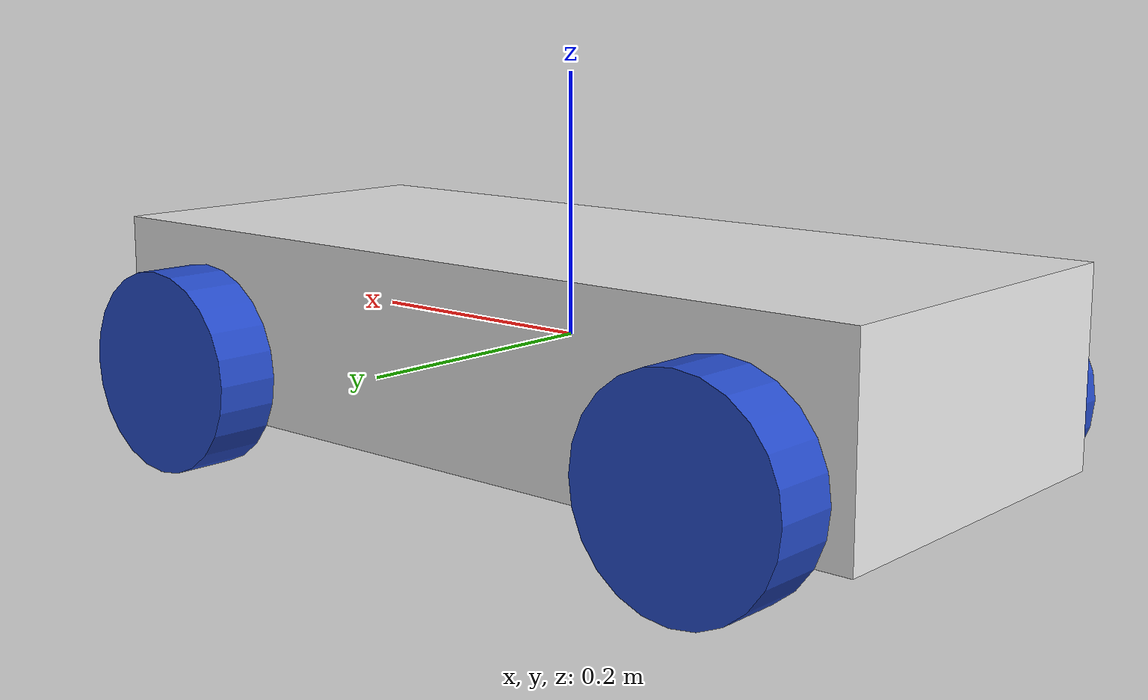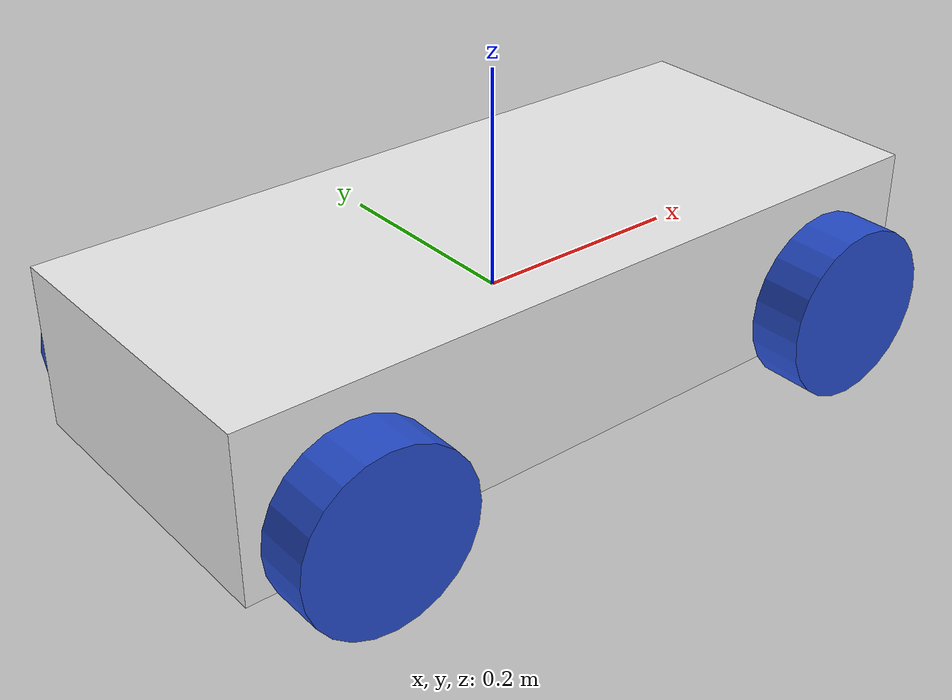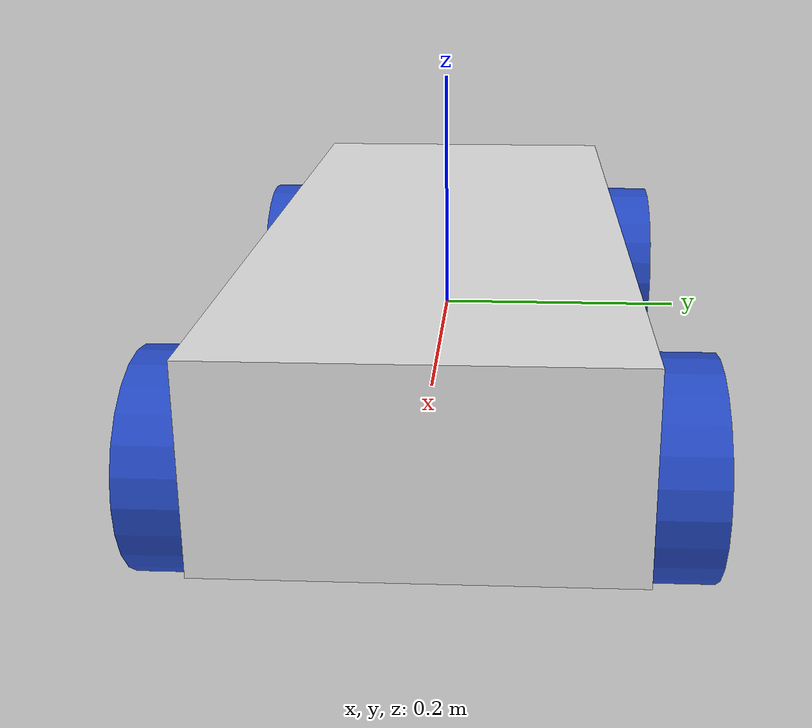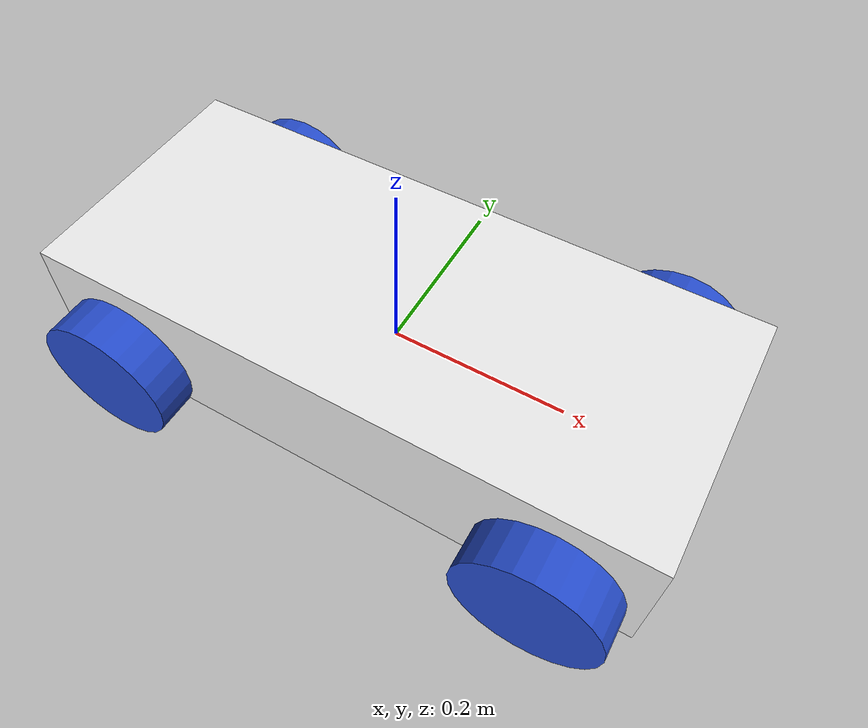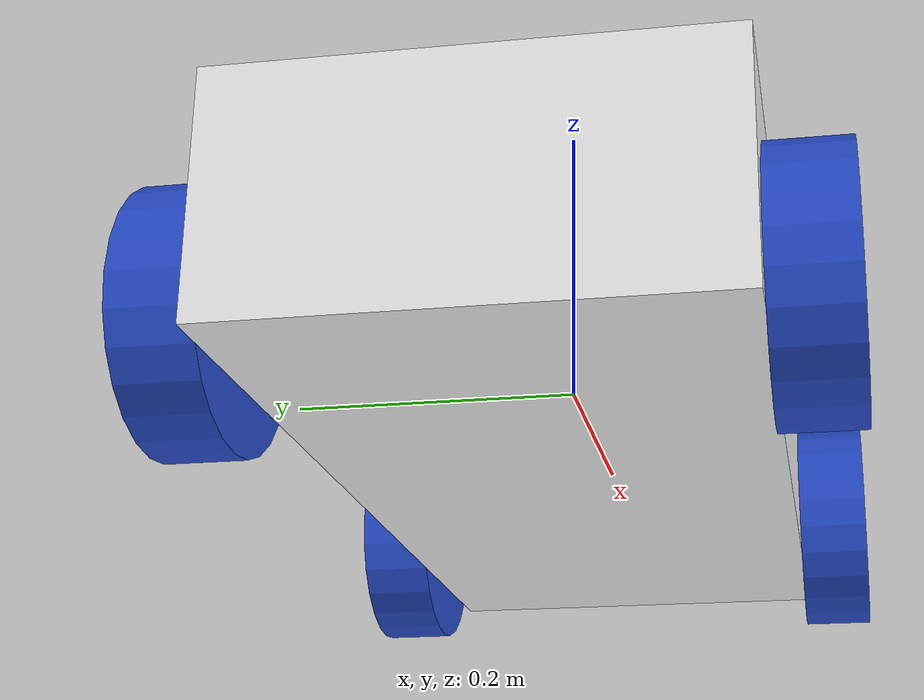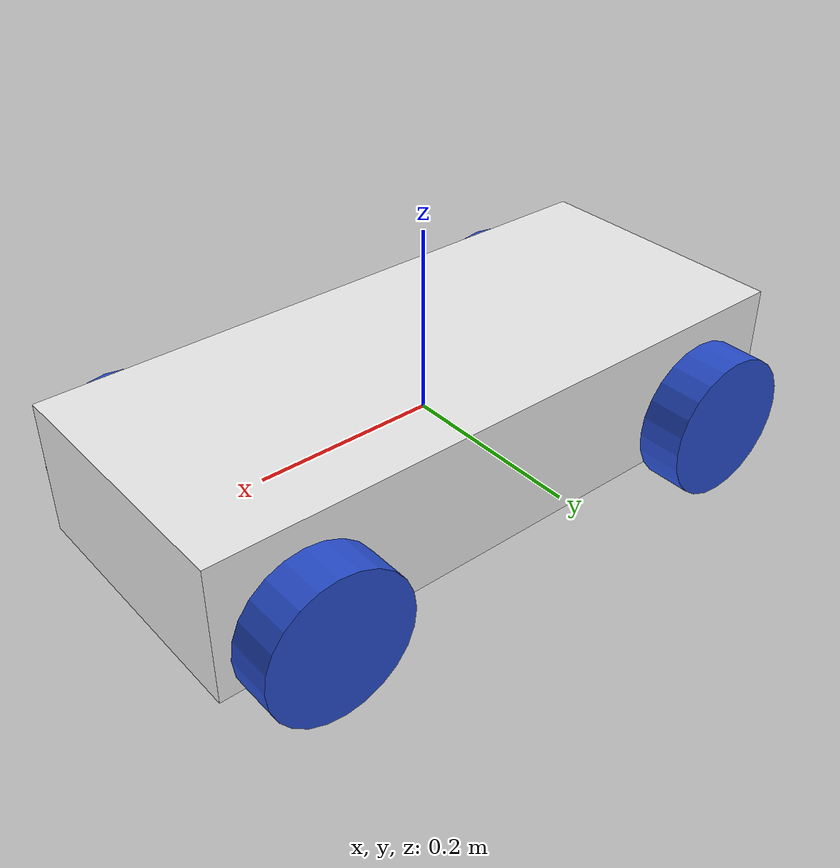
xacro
<?xml version="1.0"?>
<robot xmlns:xacro="http://www.ros.org/wiki/xacro">

    <!-- Body dimensiones -->
    <xacro:include filename="inertial_macros.xacro"/>
    <xacro:property name="body_link_x_dim" value="0.7"/>
    <xacro:property name="body_link_y_dim" value="0.3"/>
    <xacro:property name="body_link_z_dim" value="0.15"/>
    <!-- wheel dimensiones -->
    <xacro:include filename="inertial_macros.xacro"/>
    <xacro:property name="wheel_link_radius" value="0.08"/>
    <xacro:property name="wheel_link_length" value="0.05"/>
    <xacro:property name="wheel_link_z_location" value="-0.035"/>
    <!-- Example link -->
        <link name="base_link">

    </link>

    <joint name="base_joint" type="fixed">
        <parent link="base_link"/>
        <child link="chassis"/>
    </joint>
    <!-- chassis link -->
    <link name="chassis">
        <visual>
            <origin xyz="0 0 0"/>
            <geometry>
                <box size="${body_link_x_dim} ${body_link_y_dim} ${body_link_z_dim}"/>
            </geometry>
            <material name="white"/>
        </visual>
        <collision>
            <origin xyz="0 0 0"/>
            <geometry>
                <box size="${body_link_x_dim} ${body_link_y_dim} ${body_link_z_dim}"/>
            </geometry>
        </collision>
        <xacro:inertial_box mass="0.5" x="${body_link_x_dim}" y="${body_link_y_dim}" z="${body_link_z_dim}">
            <origin xyz="0 0 0" rpy="0 0 0"/>
        </xacro:inertial_box>
    </link>

    <joint name="left_steering_joint" type="revolute">
        <parent link="base_link"/>
        <child link="left_steering_link"/>
        <origin xyz="${body_link_x_dim/2-1.2*wheel_link_radius} ${body_link_y_dim/2} ${wheel_link_z_location}" rpy="0 0 0"/>
        <axis xyz="0 0 1"/>
        <limit effort="100" lower="-0.41" upper="0.41" velocity="0.5"/>

    </joint>

    <link name="left_steering_link">
        <visual>
            <origin xyz="0 0 0" rpy="${pi/2} 0 0"/>
            <geometry>
                <cylinder radius="${wheel_link_radius*0.4}" length="0.01"/>
            </geometry>
            <material name="blue"/>
        </visual>
        <collision>
            <origin xyz="0 0 0" rpy="${pi/2} 0 0"/>
            <geometry>
                <sphere radius="${wheel_link_radius*0.4}"/>
            </geometry>
        </collision>
        <xacro:inertial_cylinder mass="0.1" length="0.01" radius="${wheel_link_radius*0.4}">
            <origin xyz="0 0 0" rpy="${pi/2} 0 0"/>
        </xacro:inertial_cylinder>
    </link>

    <joint name="right_steering_joint" type="revolute">
        <parent link="base_link"/>
        <child link="right_steering_link"/>
        <origin xyz="${body_link_x_dim/2-1.2*wheel_link_radius} ${-body_link_y_dim/2} ${wheel_link_z_location}" rpy="0 0 0"/>
        <axis xyz="0 0 1"/>
        <limit effort="100" lower="-0.41" upper="0.41" velocity="0.5"/>

    </joint>

    <link name="right_steering_link">
    <visual>
            <origin xyz="0 0 0" rpy="${pi/2} 0 0"/>
            <geometry>
                <cylinder radius="${wheel_link_radius*0.4}" length="0.01"/>
            </geometry>
            <material name="blue"/>
        </visual>
        <collision>
            <origin xyz="0 0 0" rpy="${pi/2} 0 0"/>
            <geometry>
                <sphere radius="${wheel_link_radius*0.4}"/>
            </geometry>
        </collision>
        <xacro:inertial_cylinder mass="0.1" length="0.01" radius="${wheel_link_radius*0.4}">
            <origin xyz="0 0 0" rpy="${pi/2} 0 0"/>
        </xacro:inertial_cylinder>
    </link>

    <!-- rear_right_wheel joint -->
    <joint name="rear_right_wheel_joint" type="continuous">
        <parent link="base_link"/>
        <child link="rear_right_wheel"/>
        <origin xyz="${-body_link_x_dim/2+1.2*wheel_link_radius} ${-body_link_y_dim/2-wheel_link_length/2} ${wheel_link_z_location}" rpy="0 0 0"/>
        <axis xyz="0 1 0"/>

    </joint>

    <!-- rear_right_wheel link -->
    <link name="rear_right_wheel">
        <visual>
            <origin xyz="0 0 0" rpy="${pi/2} 0 0"/>
            <geometry>
                <cylinder radius="${wheel_link_radius}" length="${wheel_link_length}"/>
            </geometry>
            <material name="blue"/>
        </visual>
        <collision>
            <origin xyz="0 0 0" rpy="${pi/2} 0 0"/>
            <geometry>
                <sphere radius="${wheel_link_radius}"/>
            </geometry>
        </collision>
        <xacro:inertial_cylinder mass="0.1" length="${wheel_link_length}" radius="${wheel_link_radius}">
            <origin xyz="0 0 0" rpy="${pi/2} 0 0"/>
        </xacro:inertial_cylinder>
    </link>

    <!-- rear_left_wheel -->
    <joint name="rear_left_wheel_joint" type="continuous">
        <parent link="base_link"/>
        <child link="rear_left_wheel"/>
        <origin xyz="${-body_link_x_dim/2+1.2*wheel_link_radius} ${body_link_y_dim/2+wheel_link_length/2} ${wheel_link_z_location}" rpy="0 0 0"/>
        <axis xyz="0 1 0"/>

    </joint>

    <!-- rear_left_wheel link -->
    <link name="rear_left_wheel">
        <visual>
            <origin xyz="0 0 0" rpy="${pi/2} 0 0"/>
            <geometry>
                <cylinder radius="${wheel_link_radius}" length="${wheel_link_length}"/>
            </geometry>
            <material name="blue"/>
        </visual>
        <collision>
            <origin xyz="0 0 0" rpy="${pi/2} 0 0"/>
            <geometry>
                <sphere radius="${wheel_link_radius}"/>
            </geometry>
        </collision>
        <xacro:inertial_cylinder mass="0.1" length="${wheel_link_length}" radius="${wheel_link_radius}">
            <origin xyz="0 0 0" rpy="${pi/2} 0 0"/>
        </xacro:inertial_cylinder>
    </link>

    <!-- front_right_wheeljoint -->
    <joint name="front_right_wheel_joint" type="continuous">
        <parent link="right_steering_link"/>
        <child link="front_right_wheel"/>
        <origin xyz="0 ${-wheel_link_length/2} 0" rpy="0 0 0"/>
        <axis xyz="0 1 0"/>

    </joint>
    <!-- rear left wheel link -->
    <link name="front_right_wheel">
        <visual>
            <origin xyz="0 0 0" rpy="${pi/2} 0 0"/>
            <geometry>
                <cylinder radius="${wheel_link_radius}" length="${wheel_link_length}"/>
            </geometry>
            <material name="blue"/>
        </visual>
        <collision>
            <origin xyz="0 0 0" rpy="${pi/2} 0 0"/>
            <geometry>
                <sphere radius="${wheel_link_radius}"/>
            </geometry>
        </collision>
        <xacro:inertial_cylinder mass="0.1" length="${wheel_link_length}" radius="${wheel_link_radius}">
            <origin xyz="0 0 0" rpy="${pi/2} 0 0"/>
        </xacro:inertial_cylinder>
    </link>

    <!-- front_left_wheel joint -->
    <joint name="front_left_wheel_joint" type="continuous">
        <parent link="left_steering_link"/>
        <child link="front_left_wheel"/>
        <origin xyz="0 ${wheel_link_length/2} 0" rpy="0 0 0"/>
        <axis xyz="0 1 0"/>

    </joint>

    <!-- front_left_wheel_link -->
    <link name="front_left_wheel">
        <visual>
            <origin xyz="0 0 0" rpy="${pi/2} 0 0"/>
            <geometry>
                <cylinder radius="${wheel_link_radius}" length="${wheel_link_length}"/>
            </geometry>
            <material name="blue"/>
        </visual>
        <collision>
            <origin xyz="0 0 0" rpy="${pi/2} 0 0"/>
            <geometry>
                <sphere radius="${wheel_link_radius}"/>
            </geometry>
        </collision>
        <xacro:inertial_cylinder mass="0.1" length="${wheel_link_length}" radius="${wheel_link_radius}">
            <origin xyz="0 0 0" rpy="${pi/2} 0 0"/>
        </xacro:inertial_cylinder>
    </link>

    <gazebo reference="chassis">
        <material>Gazebo/White</material>
        <mu1 value = "0.3" />
        <mu2 value = "0.3" />
    </gazebo>

    <gazebo reference="rear_left_wheel">
        <material>Gazebo/Blue</material>
        <mu1 value = "0.3" />
        <mu2 value = "0.3" />
    </gazebo>

    <gazebo reference="rear_right_wheel">
        <material>Gazebo/Blue</material>
         <mu1 value = "0.3" />
        <mu2 value = "0.3" />
    </gazebo>

     <gazebo reference="front_left_wheel">
        <material>Gazebo/Blue</material>
         <mu1 value = "0.3" />
        <mu2 value = "0.3" />
    </gazebo>

    <gazebo reference="front_right_wheel">
        <material>Gazebo/Blue</material>
         <mu1 value = "0.3" />
        <mu2 value = "0.3" />
    </gazebo>

    <gazebo reference="right_steering_link">
        <material>Gazebo/Blue</material>
         <mu1 value = "0.2" />
        <mu2 value = "0.2" />
    </gazebo>

    <gazebo reference="left_steering_link">
        <material>Gazebo/Blue</material>
         <mu1 value = "0.2" />
        <mu2 value = "0.2" />
    </gazebo>

    <gazebo reference="steering">
        <material>Gazebo/White</material>
         <mu1 value = "0.2" />
        <mu2 value = "0.2" />
    </gazebo>

</robot>
